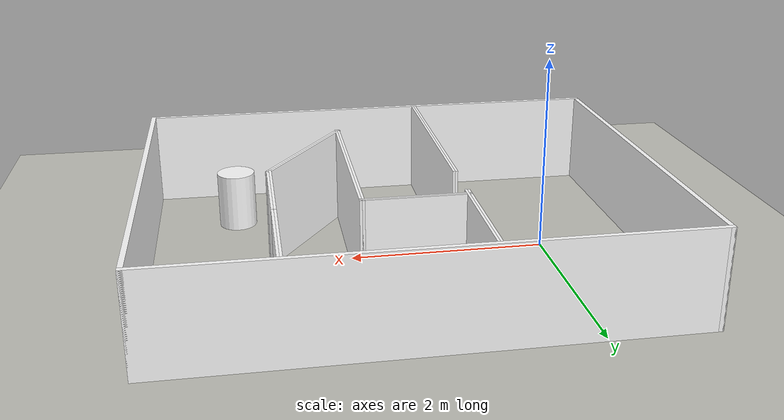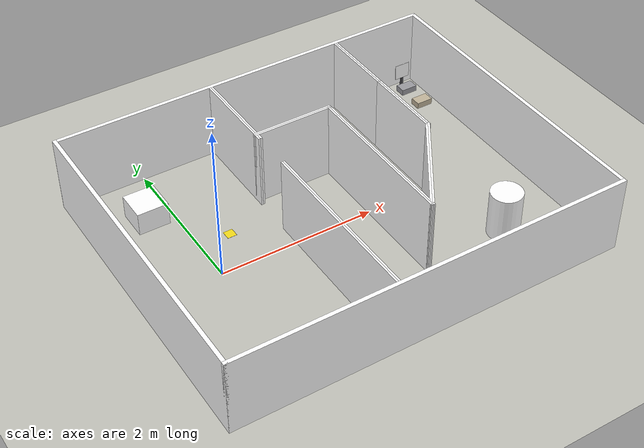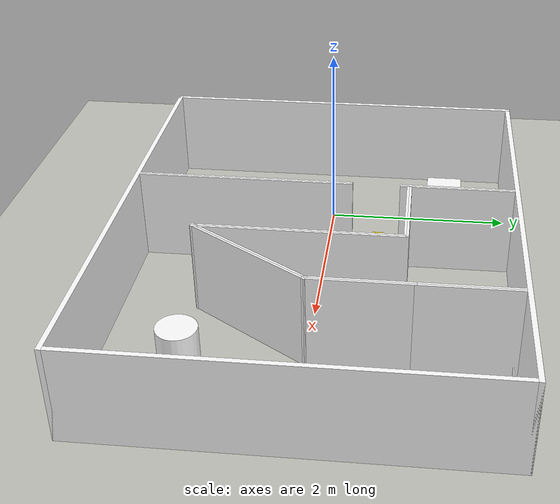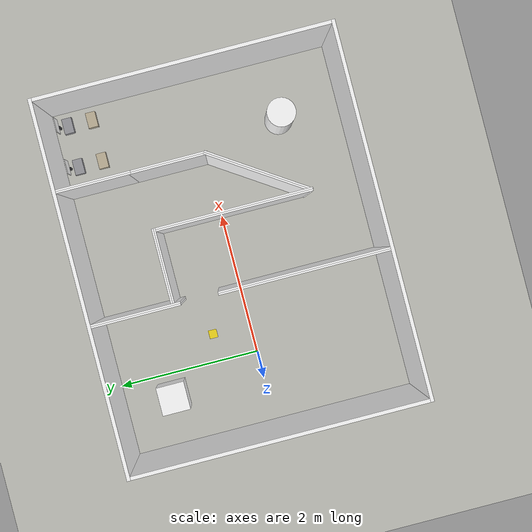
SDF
<?xml version="1.0"?>
<sdf version="1.9">
  <world name="mission_challenge">
    <physics name="1ms" type="ignored">
      <max_step_size>0.001</max_step_size>
      <real_time_factor>1.0</real_time_factor>
    </physics>
    <plugin filename="gz-sim-physics-system" name="gz::sim::systems::Physics"/>
    <plugin filename="gz-sim-user-commands-system" name="gz::sim::systems::UserCommands"/>
    <plugin filename="gz-sim-scene-broadcaster-system" name="gz::sim::systems::SceneBroadcaster"/>
    <plugin filename="gz-sim-sensors-system" name="gz::sim::systems::Sensors">
      <render_engine>ogre2</render_engine>
    </plugin>
    <plugin filename="gz-sim-imu-system" name="gz::sim::systems::Imu"/>

    <scene>
      <ambient>0.6 0.6 0.6 1</ambient>
      <background>0.8 0.8 0.8 1</background>
      <grid>false</grid>
    </scene>

    <light type="directional" name="sun">
      <cast_shadows>true</cast_shadows>
      <pose>0 0 10 0 0 0</pose>
      <diffuse>0.9 0.9 0.9 1</diffuse>
      <specular>0.2 0.2 0.2 1</specular>
      <direction>-0.5 0.1 -0.9</direction>
    </light>

    <model name="ground_plane">
      <static>true</static>
      <link name="link">
        <collision name="collision">
          <geometry><plane><normal>0 0 1</normal><size>20 20</size></plane></geometry>
        </collision>
        <visual name="visual">
          <geometry><plane><normal>0 0 1</normal><size>20 20</size></plane></geometry>
          <material><ambient>0.75 0.75 0.72 1</ambient><diffuse>0.75 0.75 0.72 1</diffuse></material>
        </visual>
      </link>
    </model>

    <model name="walls">
      <static>true</static>
      <link name="link">
        <collision name="north_c"><pose>1.5 2.025 0.5 0 0 0</pose><geometry><box><size>5.1 0.05 1.0</size></box></geometry></collision>
        <visual name="north_v"><pose>1.5 2.025 0.5 0 0 0</pose><geometry><box><size>5.1 0.05 1.0</size></box></geometry><material><ambient>1 1 1 1</ambient><diffuse>1 1 1 1</diffuse><pbr><metal><albedo_map>textures/wall_north.png</albedo_map><roughness>0.9</roughness><metalness>0</metalness></metal></pbr></material></visual>
        <collision name="south_c"><pose>1.5 -2.025 0.5 0 0 0</pose><geometry><box><size>5.1 0.05 1.0</size></box></geometry></collision>
        <visual name="south_v"><pose>1.5 -2.025 0.5 0 0 0</pose><geometry><box><size>5.1 0.05 1.0</size></box></geometry><material><ambient>1 1 1 1</ambient><diffuse>1 1 1 1</diffuse><pbr><metal><albedo_map>textures/wall_south.png</albedo_map><roughness>0.9</roughness><metalness>0</metalness></metal></pbr></material></visual>
        <collision name="east_c"><pose>4.025 0 0.5 0 0 0</pose><geometry><box><size>0.05 4.1 1.0</size></box></geometry></collision>
        <visual name="east_v"><pose>4.025 0 0.5 0 0 0</pose><geometry><box><size>0.05 4.1 1.0</size></box></geometry><material><ambient>1 1 1 1</ambient><diffuse>1 1 1 1</diffuse><pbr><metal><albedo_map>textures/wall_east.png</albedo_map><roughness>0.9</roughness><metalness>0</metalness></metal></pbr></material></visual>
        <collision name="west_c"><pose>-1.025 0 0.5 0 0 0</pose><geometry><box><size>0.05 4.1 1.0</size></box></geometry></collision>
        <visual name="west_v"><pose>-1.025 0 0.5 0 0 0</pose><geometry><box><size>0.05 4.1 1.0</size></box></geometry><material><ambient>1 1 1 1</ambient><diffuse>1 1 1 1</diffuse><pbr><metal><albedo_map>textures/wall_west.png</albedo_map><roughness>0.9</roughness><metalness>0</metalness></metal></pbr></material></visual>
        <collision name="partition_n_c"><pose>1.0 1.4 0.5 0 0 0</pose><geometry><box><size>0.05 1.2 1.0</size></box></geometry></collision>
        <visual name="partition_n_a_v"><pose>1.0125 1.4000 0.5 0 0 0.0000</pose><geometry><box><size>0.025 1.2 1.0</size></box></geometry><material><ambient>1 1 1 1</ambient><diffuse>1 1 1 1</diffuse><pbr><metal><albedo_map>textures/face_partition_n_a.png</albedo_map><roughness>0.9</roughness><metalness>0</metalness></metal></pbr></material></visual>
        <visual name="partition_n_b_v"><pose>0.9875 1.4000 0.5 0 0 0.0000</pose><geometry><box><size>0.025 1.2 1.0</size></box></geometry><material><ambient>1 1 1 1</ambient><diffuse>1 1 1 1</diffuse><pbr><metal><albedo_map>textures/face_partition_n_b.png</albedo_map><roughness>0.9</roughness><metalness>0</metalness></metal></pbr></material></visual>
        <collision name="partition_s_c"><pose>1.0 -0.85 0.5 0 0 0</pose><geometry><box><size>0.05 2.3 1.0</size></box></geometry></collision>
        <visual name="partition_s_a_v"><pose>1.0125 -0.8500 0.5 0 0 0.0000</pose><geometry><box><size>0.025 2.3 1.0</size></box></geometry><material><ambient>1 1 1 1</ambient><diffuse>1 1 1 1</diffuse><pbr><metal><albedo_map>textures/face_partition_s_a.png</albedo_map><roughness>0.9</roughness><metalness>0</metalness></metal></pbr></material></visual>
        <visual name="partition_s_b_v"><pose>0.9875 -0.8500 0.5 0 0 0.0000</pose><geometry><box><size>0.025 2.3 1.0</size></box></geometry><material><ambient>1 1 1 1</ambient><diffuse>1 1 1 1</diffuse><pbr><metal><albedo_map>textures/face_partition_s_b.png</albedo_map><roughness>0.9</roughness><metalness>0</metalness></metal></pbr></material></visual>
        <collision name="stub_c"><pose>2.8 1.5 0.5 0 0 0</pose><geometry><box><size>0.05 1.0 1.0</size></box></geometry></collision>
        <visual name="stub_a_v"><pose>2.8125 1.5000 0.5 0 0 0.0000</pose><geometry><box><size>0.025 1 1.0</size></box></geometry><material><ambient>1 1 1 1</ambient><diffuse>1 1 1 1</diffuse><pbr><metal><albedo_map>textures/face_stub_a.png</albedo_map><roughness>0.9</roughness><metalness>0</metalness></metal></pbr></material></visual>
        <visual name="stub_b_v"><pose>2.7875 1.5000 0.5 0 0 0.0000</pose><geometry><box><size>0.025 1 1.0</size></box></geometry><material><ambient>1 1 1 1</ambient><diffuse>1 1 1 1</diffuse><pbr><metal><albedo_map>textures/face_stub_b.png</albedo_map><roughness>0.9</roughness><metalness>0</metalness></metal></pbr></material></visual>
        <collision name="maze_1_c"><pose>1.5000 0.9000 0.5 0 0 0.0000</pose><geometry><box><size>1.0500 0.05 1.0</size></box></geometry></collision>
        <visual name="maze_1_a_v"><pose>1.5000 0.9125 0.5 0 0 0.0000</pose><geometry><box><size>1.05 0.025 1.0</size></box></geometry><material><ambient>1 1 1 1</ambient><diffuse>1 1 1 1</diffuse><pbr><metal><albedo_map>textures/face_maze_1_a.png</albedo_map><roughness>0.9</roughness><metalness>0</metalness></metal></pbr></material></visual>
        <visual name="maze_1_b_v"><pose>1.5000 0.8875 0.5 0 0 0.0000</pose><geometry><box><size>1.05 0.025 1.0</size></box></geometry><material><ambient>1 1 1 1</ambient><diffuse>1 1 1 1</diffuse><pbr><metal><albedo_map>textures/face_maze_1_b.png</albedo_map><roughness>0.9</roughness><metalness>0</metalness></metal></pbr></material></visual>
        <collision name="maze_2_c"><pose>2.0000 -0.1500 0.5 0 0 -1.5708</pose><geometry><box><size>2.1500 0.05 1.0</size></box></geometry></collision>
        <visual name="maze_2_a_v"><pose>2.0125 -0.1500 0.5 0 0 -1.5708</pose><geometry><box><size>2.15 0.025 1.0</size></box></geometry><material><ambient>1 1 1 1</ambient><diffuse>1 1 1 1</diffuse><pbr><metal><albedo_map>textures/face_maze_2_a.png</albedo_map><roughness>0.9</roughness><metalness>0</metalness></metal></pbr></material></visual>
        <visual name="maze_2_b_v"><pose>1.9875 -0.1500 0.5 0 0 -1.5708</pose><geometry><box><size>2.15 0.025 1.0</size></box></geometry><material><ambient>1 1 1 1</ambient><diffuse>1 1 1 1</diffuse><pbr><metal><albedo_map>textures/face_maze_2_b.png</albedo_map><roughness>0.9</roughness><metalness>0</metalness></metal></pbr></material></visual>
        <collision name="maze_3_c"><pose>2.4000 -0.6000 0.5 0 0 0.9828</pose><geometry><box><size>1.4922 0.05 1.0</size></box></geometry></collision>
        <visual name="maze_3_a_v"><pose>2.3896 -0.5931 0.5 0 0 0.9828</pose><geometry><box><size>1.4922 0.025 1.0</size></box></geometry><material><ambient>1 1 1 1</ambient><diffuse>1 1 1 1</diffuse><pbr><metal><albedo_map>textures/face_maze_3_a.png</albedo_map><roughness>0.9</roughness><metalness>0</metalness></metal></pbr></material></visual>
        <visual name="maze_3_b_v"><pose>2.4104 -0.6069 0.5 0 0 0.9828</pose><geometry><box><size>1.4922 0.025 1.0</size></box></geometry><material><ambient>1 1 1 1</ambient><diffuse>1 1 1 1</diffuse><pbr><metal><albedo_map>textures/face_maze_3_b.png</albedo_map><roughness>0.9</roughness><metalness>0</metalness></metal></pbr></material></visual>
        <collision name="maze_4_c"><pose>2.8000 0.5000 0.5 0 0 1.5708</pose><geometry><box><size>1.0500 0.05 1.0</size></box></geometry></collision>
        <visual name="maze_4_a_v"><pose>2.7875 0.5000 0.5 0 0 1.5708</pose><geometry><box><size>1.05 0.025 1.0</size></box></geometry><material><ambient>1 1 1 1</ambient><diffuse>1 1 1 1</diffuse><pbr><metal><albedo_map>textures/face_maze_4_a.png</albedo_map><roughness>0.9</roughness><metalness>0</metalness></metal></pbr></material></visual>
        <visual name="maze_4_b_v"><pose>2.8125 0.5000 0.5 0 0 1.5708</pose><geometry><box><size>1.05 0.025 1.0</size></box></geometry><material><ambient>1 1 1 1</ambient><diffuse>1 1 1 1</diffuse><pbr><metal><albedo_map>textures/face_maze_4_b.png</albedo_map><roughness>0.9</roughness><metalness>0</metalness></metal></pbr></material></visual>
      </link>
    </model>

    <model name="box_obstacle">
      <static>true</static>
      <pose>-0.3 1.3 0.15 0 0 0</pose>
      <link name="link">
        <collision name="c"><geometry><box><size>0.4 0.4 0.3</size></box></geometry></collision>
        <visual name="v"><geometry><box><size>0.4 0.4 0.3</size></box></geometry><material><ambient>1 1 1 1</ambient><diffuse>1 1 1 1</diffuse><pbr><metal><albedo_map>textures/box.png</albedo_map><roughness>0.9</roughness><metalness>0</metalness></metal></pbr></material></visual>
      </link>
    </model>

    <model name="pillar">
      <static>true</static>
      <pose>3.13 -1.13 0.3 0 0 0</pose>
      <link name="link">
        <collision name="c"><geometry><cylinder><radius>0.2</radius><length>0.6</length></cylinder></geometry></collision>
        <visual name="v"><geometry><cylinder><radius>0.2</radius><length>0.6</length></cylinder></geometry><material><ambient>1 1 1 1</ambient><diffuse>1 1 1 1</diffuse><pbr><metal><albedo_map>textures/cylinder.png</albedo_map><roughness>0.9</roughness><metalness>0</metalness></metal></pbr></material></visual>
      </link>
    </model>
    <model name="tag_station_2">
    <pose>3.2 1.8 0 0 0 -1.57080</pose>
    <static>true</static>
    <link name="link">
      <collision name="pedestal_c">
        <pose>0 0 0.040000 0 0 0</pose>
        <geometry><box><size>0.140000 0.220000 0.080000</size></box></geometry>
      </collision>
      <visual name="pedestal_v">
        <pose>0 0 0.040000 0 0 0</pose>
        <geometry><box><size>0.140000 0.220000 0.080000</size></box></geometry>
        <material>
          <ambient>0.6 0.6 0.62 1</ambient>
          <diffuse>0.6 0.6 0.62 1</diffuse>
        </material>
      </visual>
      <collision name="post_c">
        <pose>-0.120000 0 0.072500 0 0 0</pose>
        <geometry><box><size>0.030000 0.030000 0.145000</size></box></geometry>
      </collision>
      <visual name="post_v">
        <pose>-0.120000 0 0.072500 0 0 0</pose>
        <geometry><box><size>0.030000 0.030000 0.145000</size></box></geometry>
        <material>
          <ambient>0.3 0.3 0.32 1</ambient>
          <diffuse>0.3 0.3 0.32 1</diffuse>
        </material>
      </visual>
      <collision name="board_c">
        <pose>-0.120000 0 0.250000 0 0 0</pose>
        <geometry><box><size>0.010000 0.210000 0.210000</size></box></geometry>
      </collision>
      <visual name="board_v">
        <pose>-0.120000 0 0.250000 0 0 0</pose>
        <geometry><box><size>0.010000 0.210000 0.210000</size></box></geometry>
        <material>
          <ambient>1 1 1 1</ambient>
          <diffuse>1 1 1 1</diffuse>
          <pbr><metal>
            <albedo_map>textures/tag_2.png</albedo_map>
            <roughness>0.9</roughness>
            <metalness>0</metalness>
          </metal></pbr>
        </material>
      </visual>
    </link>
  </model>
    <model name="tag_station_3">
    <pose>3.8 1.8 0 0 0 -1.57080</pose>
    <static>true</static>
    <link name="link">
      <collision name="pedestal_c">
        <pose>0 0 0.040000 0 0 0</pose>
        <geometry><box><size>0.140000 0.220000 0.080000</size></box></geometry>
      </collision>
      <visual name="pedestal_v">
        <pose>0 0 0.040000 0 0 0</pose>
        <geometry><box><size>0.140000 0.220000 0.080000</size></box></geometry>
        <material>
          <ambient>0.6 0.6 0.62 1</ambient>
          <diffuse>0.6 0.6 0.62 1</diffuse>
        </material>
      </visual>
      <collision name="post_c">
        <pose>-0.120000 0 0.072500 0 0 0</pose>
        <geometry><box><size>0.030000 0.030000 0.145000</size></box></geometry>
      </collision>
      <visual name="post_v">
        <pose>-0.120000 0 0.072500 0 0 0</pose>
        <geometry><box><size>0.030000 0.030000 0.145000</size></box></geometry>
        <material>
          <ambient>0.3 0.3 0.32 1</ambient>
          <diffuse>0.3 0.3 0.32 1</diffuse>
        </material>
      </visual>
      <collision name="board_c">
        <pose>-0.120000 0 0.250000 0 0 0</pose>
        <geometry><box><size>0.010000 0.210000 0.210000</size></box></geometry>
      </collision>
      <visual name="board_v">
        <pose>-0.120000 0 0.250000 0 0 0</pose>
        <geometry><box><size>0.010000 0.210000 0.210000</size></box></geometry>
        <material>
          <ambient>1 1 1 1</ambient>
          <diffuse>1 1 1 1</diffuse>
          <pbr><metal>
            <albedo_map>textures/tag_3.png</albedo_map>
            <roughness>0.9</roughness>
            <metalness>0</metalness>
          </metal></pbr>
        </material>
      </visual>
    </link>
  </model>
  <model name="pick_pedestal_2">
    <pose>3.2000 1.4500 0.04 0 0 -1.57080</pose>
    <static>true</static>
    <link name="link">
      <visual name="visual">
        <geometry><box><size>0.14 0.22 0.08</size></box></geometry>
        <material>
          <ambient>0.75 0.70 0.60 1</ambient>
          <diffuse>0.75 0.70 0.60 1</diffuse>
        </material>
      </visual>
      <collision name="collision">
        <geometry><box><size>0.14 0.22 0.08</size></box></geometry>
      </collision>
    </link>
  </model>
  <model name="pick_pedestal_3">
    <pose>3.8000 1.4500 0.04 0 0 -1.57080</pose>
    <static>true</static>
    <link name="link">
      <visual name="visual">
        <geometry><box><size>0.14 0.22 0.08</size></box></geometry>
        <material>
          <ambient>0.75 0.70 0.60 1</ambient>
          <diffuse>0.75 0.70 0.60 1</diffuse>
        </material>
      </visual>
      <collision name="collision">
        <geometry><box><size>0.14 0.22 0.08</size></box></geometry>
      </collision>
    </link>
  </model>
    <model name="mission_pad">
      <pose>0.4 0.55 0.001 0 0 0</pose>
      <static>true</static>
      <link name="link"><visual name="v"><geometry><box><size>0.12 0.12 0.002</size></box></geometry>
        <material><ambient>0.95 0.85 0.1 1</ambient><diffuse>0.95 0.85 0.1 1</diffuse></material></visual></link>
    </model>
  </world>
</sdf>
